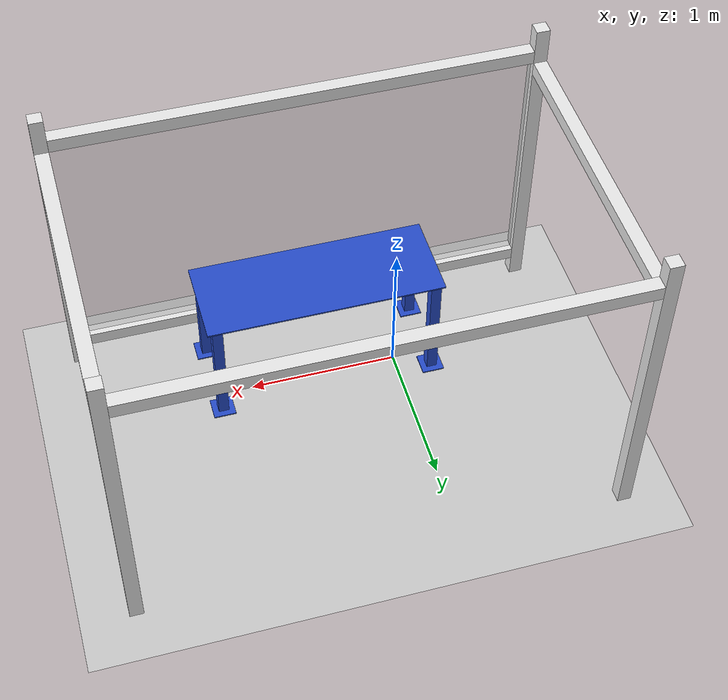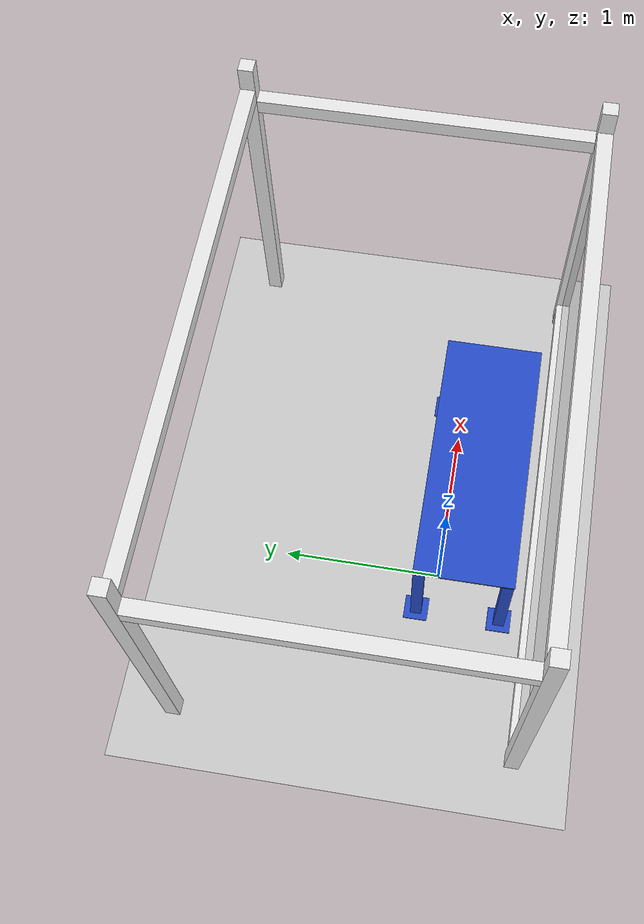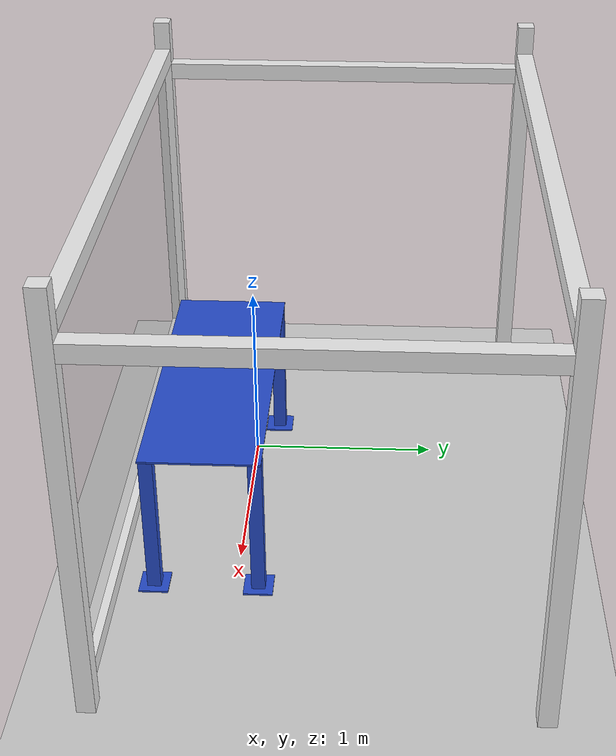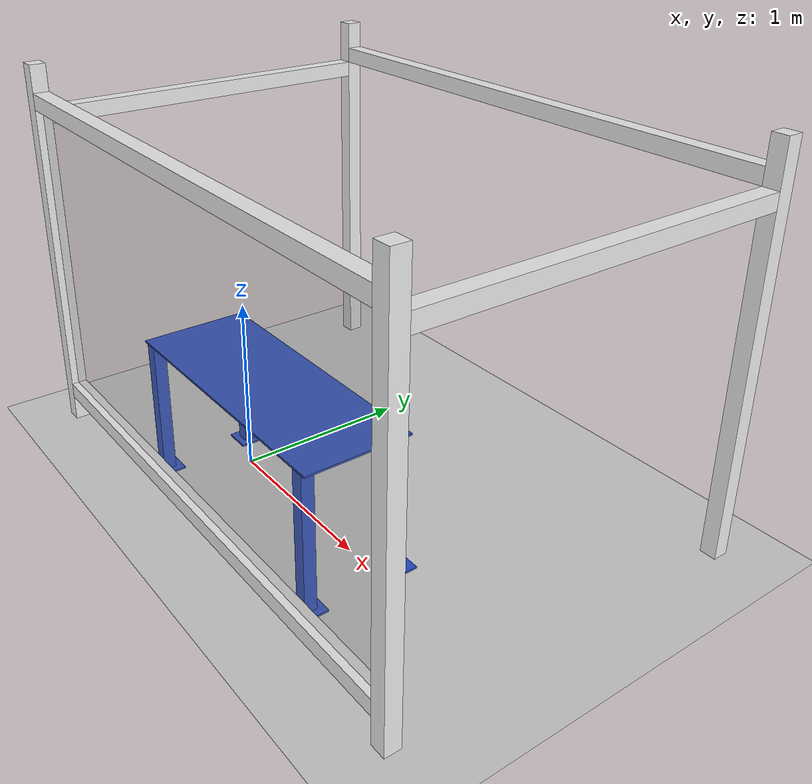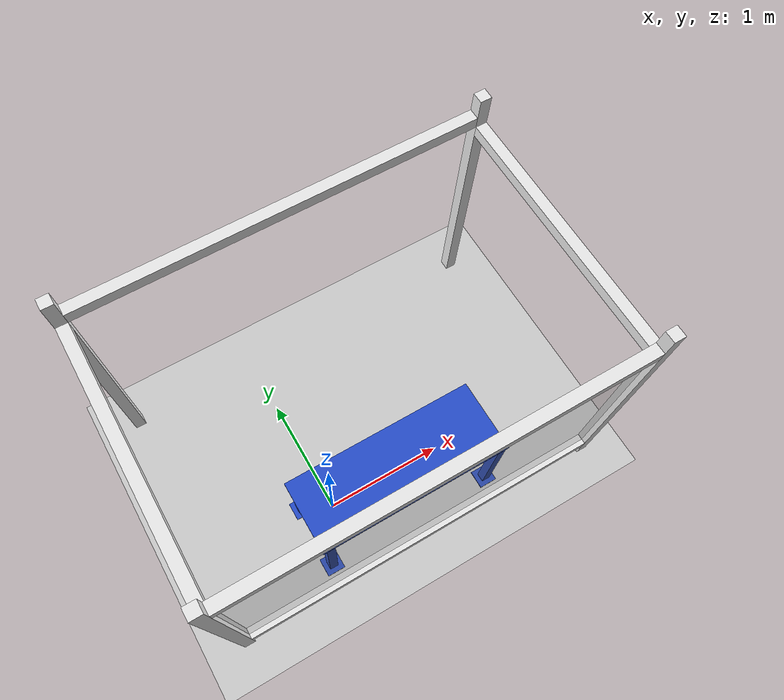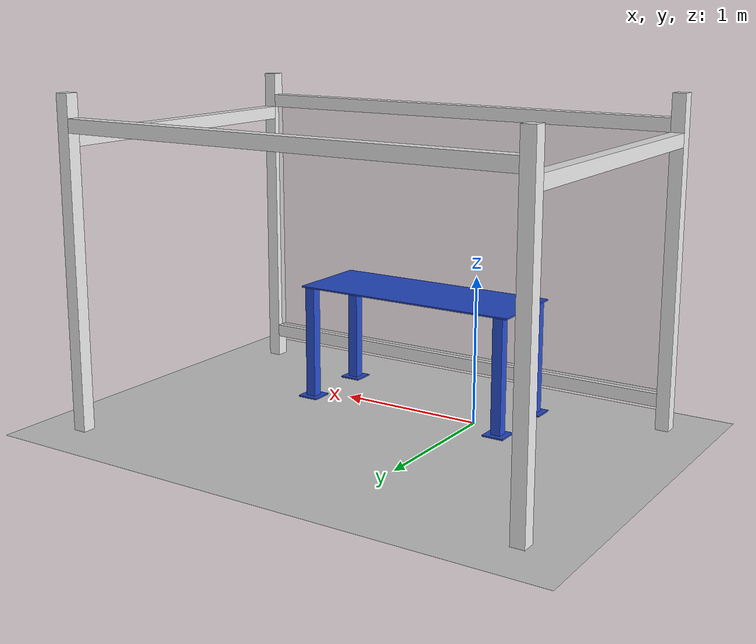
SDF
<?xml version="1.0" ?>
<sdf version="1.4">
  <world name="telerobcar_setup">
    <physics type="ode">
      <gravity>0 0 -9.81</gravity>
      <ode>
        <solver>
          <type>quick</type>
          <iters>50</iters>
          <sor>1.4</sor>
        </solver>
        <constraints>
          <cfm>0.0</cfm>
          <erp>0.2</erp>
          <contact_max_correcting_vel>100.0</contact_max_correcting_vel>
          <contact_surface_layer>0.0</contact_surface_layer>
        </constraints>
      </ode>
      <real_time_update_rate>1000</real_time_update_rate>
      <max_step_size>0.001</max_step_size>
    </physics>
    <scene>
      <ambient>0.3 0.3 0.3 1.0</ambient>
    </scene>
    <!-- Focus camera on the setup -->
    <gui fullscreen='0'>
      <camera name='user_camera'>
        <pose>-0.821519 1.45483 2.69864 0 0.635643 -0.890988</pose>
        <view_controller>orbit</view_controller>
      </camera>
    </gui>
    <!-- Light Source -->
    <light type="directional" name="sun">
      <cast_shadows>true</cast_shadows>
      <pose>0 0 100 0 0 0</pose>
      <diffuse>0.9 0.9 0.9 1</diffuse>
      <specular>0.1 0.1 0.1 1</specular>
      <attenuation>
        <range>1000</range>
        <constant>0.9</constant>
        <linear>0.01</linear>
        <quadratic>0.001</quadratic>
      </attenuation>
      <direction>-0.2 0.0 -1.0</direction>
    </light>
    <!-- Point Light Source -->
    <light type="point" name="light_bulb">
      <cast_shadows>false</cast_shadows>
      <pose>-3 0 4 0 0 0</pose>
      <diffuse>0.5 0.5 0.5 1</diffuse>
      <specular>0.0 0.0 0.0 1</specular>
      <attenuation>
        <range>80</range>
        <constant>0.9</constant>
        <linear>0.01</linear>
        <quadratic>0.001</quadratic>
      </attenuation>
    </light>
    <!-- A ground plane -->
    <include>
      <uri>model://ground_plane</uri>
      <pose>0 0 0 0 0 0</pose>
    </include>
    <!-- The blue_table -->
    <include>
      <uri>model://blue_table</uri>
      <pose>0.5 -0.15 0 0 0 0</pose>
    </include>
    <!-- The grips_cage -->
    <include>
      <uri>model://grips_cage</uri>
      <pose>0.5 0.451 0 0 0 0</pose>
    </include>
  </world>
</sdf>

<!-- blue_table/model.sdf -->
<sdf version="1.4">
  <model name="blue_table">
    <static>true</static>
    <link name="link">
      <collision name="surface">
        <pose>0 0 0.795 0 0 0</pose>
        <geometry>
          <box>
            <size>1.6 0.6 0.01</size>
          </box>
        </geometry>
      </collision>
      <visual name="surface">
        <pose>0 0 0.795 0 0 0</pose>
        <geometry>
          <box>
            <size>1.6 0.6 0.01</size>
          </box>
        </geometry>
        <material>
          <script>
            <uri>file://media/materials/scripts/gazebo.material</uri>
            <name>Gazebo/Blue</name>
          </script>
        </material>
      </visual>

      <collision name="front_r_pad">
        <pose>0.735 0.265 0.0045 0 0 0</pose>
        <geometry>
          <box>
            <size>0.15 0.15 0.009</size>
          </box>
        </geometry>
      </collision>
      <visual name="front_r_pad">
        <pose>0.735 0.265 0.0045 0 0 0</pose>
        <geometry>
          <box>
            <size>0.15 0.15 0.009</size>
          </box>
        </geometry>
        <material>
          <script>
            <uri>file://media/materials/scripts/gazebo.material</uri>
            <name>Gazebo/Blue</name>
          </script>
        </material>
      </visual>

      <collision name="front_l_pad">
        <pose>-0.735 0.265 0.0045 0 0 0</pose>
        <geometry>
          <box>
            <size>0.15 0.15 0.009</size>
          </box>
        </geometry>
      </collision>
      <visual name="front_l_pad">
        <pose>-0.735 0.265 0.0045 0 0 0</pose>
        <geometry>
          <box>
            <size>0.15 0.15 0.009</size>
          </box>
        </geometry>
        <material>
          <script>
            <uri>file://media/materials/scripts/gazebo.material</uri>
            <name>Gazebo/Blue</name>
          </script>
        </material>
      </visual>

      <collision name="back_r_pad">
        <pose>0.735 -0.265 0.0045 0 0 0</pose>
        <geometry>
          <box>
            <size>0.15 0.15 0.009</size>
          </box>
        </geometry>
      </collision>
      <visual name="back_r_pad">
        <pose>0.735 -0.265 0.0045 0 0 0</pose>
        <geometry>
          <box>
            <size>0.15 0.15 0.009</size>
          </box>
        </geometry>
        <material>
          <script>
            <uri>file://media/materials/scripts/gazebo.material</uri>
            <name>Gazebo/Blue</name>
          </script>
        </material>
      </visual>

      <collision name="back_l_pad">
        <pose>-0.735 -0.265 0.0045 0 0 0</pose>
        <geometry>
          <box>
            <size>0.15 0.15 0.009</size>
          </box>
        </geometry>
      </collision>
      <visual name="back_l_pad">
        <pose>-0.735 -0.265 0.0045 0 0 0</pose>
        <geometry>
          <box>
            <size>0.15 0.15 0.009</size>
          </box>
        </geometry>
        <material>
          <script>
            <uri>file://media/materials/scripts/gazebo.material</uri>
            <name>Gazebo/Blue</name>
          </script>
        </material>
      </visual>

      <collision name="front_r_leg">
        <pose>0.735 0.265 0.3995 0 0 0</pose>
        <geometry>
          <box>
            <size>0.07 0.07 0.781</size>
          </box>
        </geometry>
      </collision>
      <visual name="front_r_leg">
        <pose>0.735 0.265 0.3995 0 0 0</pose>
        <geometry>
          <box>
            <size>0.07 0.07 0.781</size>
          </box>
        </geometry>
        <material>
          <script>
            <uri>file://media/materials/scripts/gazebo.material</uri>
            <name>Gazebo/Blue</name>
          </script>
        </material>
      </visual>

      <collision name="front_l_leg">
        <pose>-0.735 0.265 0.3995 0 0 0</pose>
        <geometry>
          <box>
            <size>0.07 0.07 0.781</size>
          </box>
        </geometry>
      </collision>
      <visual name="front_l_leg">
        <pose>-0.735 0.265 0.3995 0 0 0</pose>
        <geometry>
          <box>
            <size>0.07 0.07 0.781</size>
          </box>
        </geometry>
        <material>
          <script>
            <uri>file://media/materials/scripts/gazebo.material</uri>
            <name>Gazebo/Blue</name>
          </script>
        </material>
      </visual>

      <collision name="back_r_leg">
        <pose>0.735 -0.265 0.3995 0 0 0</pose>
        <geometry>
          <box>
            <size>0.07 0.07 0.781</size>
          </box>
        </geometry>
      </collision>
      <visual name="back_r_leg">
        <pose>0.735 -0.265 0.3995 0 0 0</pose>
        <geometry>
          <box>
            <size>0.07 0.07 0.781</size>
          </box>
        </geometry>
        <material>
          <script>
            <uri>file://media/materials/scripts/gazebo.material</uri>
            <name>Gazebo/Blue</name>
          </script>
        </material>
      </visual>

      <collision name="back_l_leg">
        <pose>-0.735 -0.265 0.3995 0 0 0</pose>
        <geometry>
          <box>
            <size>0.07 0.07 0.781</size>
          </box>
        </geometry>
      </collision>
      <visual name="back_l_leg">
        <pose>-0.735 -0.265 0.3995 0 0 0</pose>
        <geometry>
          <box>
            <size>0.07 0.07 0.781</size>
          </box>
        </geometry>
        <material>
          <script>
            <uri>file://media/materials/scripts/gazebo.material</uri>
            <name>Gazebo/Blue</name>
          </script>
        </material>
      </visual>
    </link>
  </model>
</sdf>

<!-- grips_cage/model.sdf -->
<sdf version="1.4">
  <model name="grips_cage">
    <static>true</static>
    <link name="link">

      <collision name="surface">
        <pose>0 -1.045 1.1 0 0 0</pose>
        <geometry>
          <box>
            <size>3.1 0.008 1.71</size>
          </box>
        </geometry>
      </collision>
      <visual name="surface">
        <pose>0 -1.045 1.1 0 0 0</pose>
        <geometry>
          <box>
            <size>3.1 0.008 1.71</size>
          </box>
        </geometry>
        <transparency>0.75</transparency>
        <material>
          <script>
            <uri>file://media/materials/scripts/gazebo.material</uri>
            <name>Gazebo/Grey</name>
          </script>
        </material>
      </visual>

      <!-- Legs -->
      <collision name="front_r_leg">
        <pose>1.595 1.045 1.1 0 0 0</pose>
        <geometry>
          <box>
            <size>0.09 0.09 2.2</size>
          </box>
        </geometry>
      </collision>
      <visual name="front_r_leg">
        <pose>1.595 1.045 1.1 0 0 0</pose>
        <geometry>
          <box>
            <size>0.09 0.09 2.2</size>
          </box>
        </geometry>
        <material>
          <script>
            <uri>file://media/materials/scripts/gazebo.material</uri>
            <name>Gazebo/White</name>
          </script>
        </material>
      </visual>

      <collision name="front_l_leg">
        <pose>-1.595 1.045 1.1 0 0 0</pose>
        <geometry>
          <box>
            <size>0.09 0.09 2.2</size>
          </box>
        </geometry>
      </collision>
      <visual name="front_l_leg">
        <pose>-1.595 1.045 1.1 0 0 0</pose>
        <geometry>
          <box>
            <size>0.09 0.09 2.2</size>
          </box>
        </geometry>
        <material>
          <script>
            <uri>file://media/materials/scripts/gazebo.material</uri>
            <name>Gazebo/White</name>
          </script>
        </material>
      </visual>

      <collision name="back_r_leg">
        <pose>1.595 -1.045 1.1 0 0 0</pose>
        <geometry>
          <box>
            <size>0.09 0.09 2.2</size>
          </box>
        </geometry>
      </collision>
      <visual name="back_r_leg">
        <pose>1.595 -1.045 1.1 0 0 0</pose>
        <geometry>
          <box>
            <size>0.09 0.09 2.2</size>
          </box>
        </geometry>
        <material>
          <script>
            <uri>file://media/materials/scripts/gazebo.material</uri>
            <name>Gazebo/White</name>
          </script>
        </material>
      </visual>

      <collision name="back_l_leg">
        <pose>-1.595 -1.045 1.1 0 0 0</pose>
        <geometry>
          <box>
            <size>0.09 0.09 2.2</size>
          </box>
        </geometry>
      </collision>
      <visual name="back_l_leg">
        <pose>-1.595 -1.045 1.1 0 0 0</pose>
        <geometry>
          <box>
            <size>0.09 0.09 2.2</size>
          </box>
        </geometry>
        <material>
          <script>
            <uri>file://media/materials/scripts/gazebo.material</uri>
            <name>Gazebo/White</name>
          </script>
        </material>
      </visual>

      <!-- Arms -->
      <collision name="front_arm">
        <pose>0 1.045 2 0 0 0</pose>
        <geometry>
          <box>
            <size>3.1 0.09 0.09</size>
          </box>
        </geometry>
      </collision>
      <visual name="front_arm">
        <pose>0 1.045 2 0 0 0</pose>
        <geometry>
          <box>
            <size>3.1 0.09 0.09</size>
          </box>
        </geometry>
        <material>
          <script>
            <uri>file://media/materials/scripts/gazebo.material</uri>
            <name>Gazebo/White</name>
          </script>
        </material>
      </visual>

      <collision name="back_top_arm">
        <pose>0 -1.045 2 0 0 0</pose>
        <geometry>
          <box>
            <size>3.1 0.09 0.09</size>
          </box>
        </geometry>
      </collision>
      <visual name="back_top_arm">
        <pose>0 -1.045 2 0 0 0</pose>
        <geometry>
          <box>
            <size>3.1 0.09 0.09</size>
          </box>
        </geometry>
        <material>
          <script>
            <uri>file://media/materials/scripts/gazebo.material</uri>
            <name>Gazebo/White</name>
          </script>
        </material>
      </visual>

      <collision name="back_bottom_arm">
        <pose>0 -1.045 0.2 0 0 0</pose>
        <geometry>
          <box>
            <size>3.1 0.09 0.09</size>
          </box>
        </geometry>
      </collision>
      <visual name="back_bottom_arm">
        <pose>0 -1.045 0.2 0 0 0</pose>
        <geometry>
          <box>
            <size>3.1 0.09 0.09</size>
          </box>
        </geometry>
        <material>
          <script>
            <uri>file://media/materials/scripts/gazebo.material</uri>
            <name>Gazebo/White</name>
          </script>
        </material>
      </visual>

      <collision name="left_arm">
        <pose>-1.595 0 1.91 0 0 0</pose>
        <geometry>
          <box>
            <size>0.09 2 0.09</size>
          </box>
        </geometry>
      </collision>
      <visual name="left_arm">
        <pose>-1.595 0 1.91 0 0 0</pose>
        <geometry>
          <box>
            <size>0.09 2 0.09</size>
          </box>
        </geometry>
        <material>
          <script>
            <uri>file://media/materials/scripts/gazebo.material</uri>
            <name>Gazebo/White</name>
          </script>
        </material>
      </visual>

      <collision name="right_arm">
        <pose>1.595 0 1.91 0 0 0</pose>
        <geometry>
          <box>
            <size>0.09 2 0.09</size>
          </box>
        </geometry>
      </collision>
      <visual name="right_arm">
        <pose>1.595 0 1.91 0 0 0</pose>
        <geometry>
          <box>
            <size>0.09 2 0.09</size>
          </box>
        </geometry>
        <material>
          <script>
            <uri>file://media/materials/scripts/gazebo.material</uri>
            <name>Gazebo/White</name>
          </script>
        </material>
      </visual>

    </link>
  </model>
</sdf>
